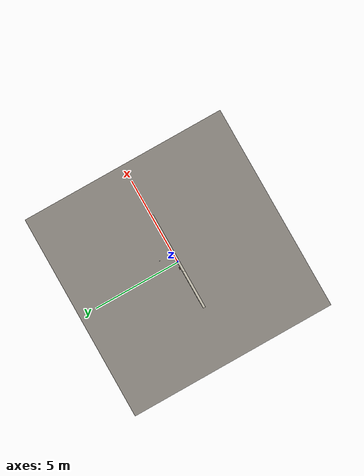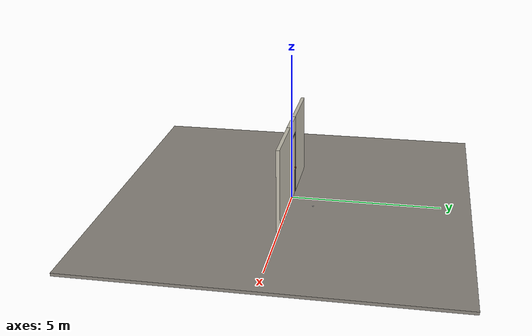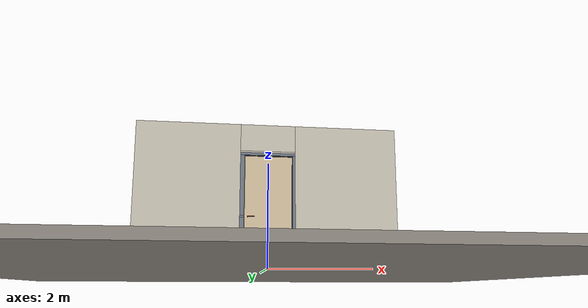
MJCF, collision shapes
<?xml version="1.0" ?>
<mujoco model="db0999_swing_single_full">
  <compiler angle="radian" meshdir="../../hardware" texturedir="../../textures" autolimits="true" inertiafromgeom="false"/>
  <option timestep="0.002" integrator="implicitfast" cone="elliptic" impratio="10" noslip_iterations="3">
    <flag multiccd="enable"/>
  </option>
  <size memory="16M"/>
  <default>
    <geom condim="4" solref="0.005 1" solimp="0.95 0.99 0.001"/>
    <joint solreflimit="0.005 1" solimplimit="0.95 0.99 0.001"/>
    <tendon solreflimit="0.005 1"/>
    <equality solref="0.002 1"/>
  </default>
  <visual>
    <headlight ambient="0.4 0.4 0.4" diffuse="0.7 0.7 0.7" specular="0.2 0.2 0.2"/>
    <quality shadowsize="4096"/>
    <map znear="0.01" zfar="60"/>
  </visual>
  <asset>
    <mesh name="hinge_dcb8da44bf" file="hinge_dcb8da44bf.obj"/>
    <mesh name="hinge_jamb_8e208d7310" file="hinge_jamb_8e208d7310.obj"/>
    <mesh name="lever_9f02b544cf" file="lever_9f02b544cf.obj"/>
    <material name="mat_floor" rgba="0.55 0.53 0.5 1" specular="0.2" shininess="0.15" reflectance="0"/>
    <material name="mat_wall" rgba="0.78 0.76 0.7 1" specular="0.2" shininess="0.1" reflectance="0"/>
    <material name="mat_leaf" rgba="0.82 0.75 0.62 1" specular="0.2" shininess="0.52" reflectance="0"/>
    <material name="mat_hinge" rgba="0.65 0.66 0.68 1" specular="0.74" shininess="0.5" reflectance="0.36"/>
    <material name="mat_op_nickel_satin" rgba="0.72 0.7 0.66 1" specular="0.8" shininess="0.65" reflectance="0.4"/>
    <material name="mat_trim" rgba="0.85 0.66 0.3 1" specular="0.8" shininess="0.75" reflectance="0.4"/>
    <material name="mat_bolt" rgba="0.85 0.66 0.3 1" specular="0.8" shininess="0.75" reflectance="0.4"/>
    <material name="mat_frame" rgba="0.45 0.48 0.52 1" specular="0.32" shininess="0.6" reflectance="0.08"/>
    <material name="mat_kick" rgba="0.75 0.76 0.77 1" specular="0.8" shininess="0.65" reflectance="0.4"/>
    <material name="mat_stop" rgba="0.9 0.9 0.92 1" specular="0.8" shininess="0.9" reflectance="0.4"/>
    <texture name="skybox" type="skybox" builtin="gradient" rgb1="0.6 0.7 0.85" rgb2="0.9 0.92 0.95" width="256" height="256"/>
  </asset>
  <worldbody>
    <light name="sun" pos="1.5 -2.5 4" dir="-0.3 0.5 -0.8" directional="true" diffuse="0.8 0.8 0.8" specular="0.3 0.3 0.3" castshadow="true"/>
    <light name="fill" pos="-1.5 2.5 3" dir="0.3 -0.5 -0.7" directional="true" diffuse="0.35 0.35 0.4" castshadow="false"/>
    <camera name="robot_view" pos="0 -2.659812 1.812087" xyaxes="1 0 0 0 0.26963 0.962964" fovy="52"/>
    <camera name="far_view" pos="0 2.615813 1.812087" xyaxes="-1 0 0 0 -0.26963 0.962964" fovy="52"/>
    <camera name="iso" pos="-2.004737 -2.237762 2.234138" xyaxes="0.741536 -0.670913 0 0.242917 0.268487 0.932151" fovy="46"/>
    <camera name="detail_handle" pos="-0.106 -0.8835 1.245" xyaxes="0.97561 0.219512 0 -0.070934 0.315262 0.94635" fovy="38"/>
    <geom name="floor" type="box" size="6 6 0.05" pos="0 0 -0.05" material="mat_floor" group="0" contype="1" conaffinity="1" friction="0.8 0.005 0.0001" density="2400"/>
    <geom name="wall_left" type="box" size="0.9795 0.0575 1.3735" pos="-1.5205 -0.022 1.3735" material="mat_wall" group="0" contype="1" conaffinity="1" friction="0.6 0.005 0.0001" density="800"/>
    <geom name="wall_right" type="box" size="0.9945 0.0575 1.3735" pos="1.5055 -0.022 1.3735" material="mat_wall" group="0" contype="1" conaffinity="1" friction="0.6 0.005 0.0001" density="800"/>
    <geom name="wall_header" type="box" size="0.526 0.0575 0.26" pos="-0.015 -0.022 2.487" material="mat_wall" group="0" contype="1" conaffinity="1" friction="0.6 0.005 0.0001" density="800"/>
    <geom name="hinge_0_jamb" type="mesh" mesh="hinge_jamb_8e208d7310" pos="0.458 0.0355 0.259" quat="0 0 0 1" material="mat_hinge" group="1" contype="0" conaffinity="0" density="7850"/>
    <geom name="hinge_1_jamb" type="mesh" mesh="hinge_jamb_8e208d7310" pos="0.458 0.0355 1.076" quat="0 0 0 1" material="mat_hinge" group="1" contype="0" conaffinity="0" density="7850"/>
    <geom name="hinge_2_jamb" type="mesh" mesh="hinge_jamb_8e208d7310" pos="0.458 0.0355 1.963" quat="0 0 0 1" material="mat_hinge" group="1" contype="0" conaffinity="0" density="7850"/>
    <geom name="jamb_hinge" type="box" size="0.025 0.0575 1.0735" pos="0.486 -0.022 1.0735" material="mat_frame" group="0" contype="1" conaffinity="1" friction="0.6 0.005 0.0001" density="300"/>
    <geom name="strike_965_wall_n" type="box" size="0.04 0.035 0.0183" pos="-0.501 -0.0445 0.965" material="mat_frame" group="0" contype="1" conaffinity="1" friction="0.6 0.005 0.0001" density="300"/>
    <geom name="strike_965_wall_p" type="box" size="0.04 0.008 0.0183" pos="-0.501 0.0175 0.965" material="mat_frame" group="0" contype="1" conaffinity="1" friction="0.6 0.005 0.0001" density="300"/>
    <geom name="strike_965_ramp" type="box" size="0.04 0.018028 0.0183" pos="-0.504282 0.018312 0.965" quat="0.957092 0 0 0.289784" material="mat_frame" group="0" contype="1" conaffinity="1" friction="0.12 0.005 0.0001" density="300"/>
    <geom name="strike_965_back" type="box" size="0.0285 0.0095 0.0183" pos="-0.5125 0 0.965" material="mat_frame" group="0" contype="1" conaffinity="1" friction="0.6 0.005 0.0001" density="300"/>
    <geom name="jamb_strike_0" type="box" size="0.04 0.0575 0.47335" pos="-0.501 -0.022 0.47335" material="mat_frame" group="0" contype="1" conaffinity="1" friction="0.6 0.005 0.0001" density="300"/>
    <geom name="jamb_strike_1" type="box" size="0.04 0.0575 0.58185" pos="-0.501 -0.022 1.56515" material="mat_frame" group="0" contype="1" conaffinity="1" friction="0.6 0.005 0.0001" density="300"/>
    <geom name="jamb_head" type="box" size="0.526 0.0575 0.025" pos="-0.015 -0.022 2.172" material="mat_frame" group="0" contype="1" conaffinity="1" friction="0.6 0.005 0.0001" density="300"/>
    <geom name="head_stud" type="box" size="0.526 0.0575 0.015" pos="-0.015 -0.022 2.212" material="mat_wall" group="0" contype="1" conaffinity="1" friction="0.6 0.005 0.0001" density="500"/>
    <geom name="stop_hinge" type="box" size="0.0055 0.016 1.0735" pos="0.4555 -0.045 1.0735" material="mat_frame" group="0" contype="1" conaffinity="1" friction="0.6 0.005 0.0001" density="300"/>
    <geom name="stop_strike" type="box" size="0.0055 0.016 1.0735" pos="-0.4555 -0.045 1.0735" material="mat_frame" group="0" contype="1" conaffinity="1" friction="0.6 0.005 0.0001" density="300"/>
    <geom name="stop_head" type="box" size="0.461 0.016 0.0055" pos="0 -0.045 2.1415" material="mat_frame" group="0" contype="1" conaffinity="1" friction="0.6 0.005 0.0001" density="300"/>
    <geom name="floor_stop_dome" type="sphere" size="0.025" pos="0.545635 0.807701 0" material="mat_stop" group="0" contype="1" conaffinity="1" friction="0.6 0.005 0.0001" density="7000"/>
    <site name="approach_point" pos="0 -1.5 0" quat="1 0 0 0" size="0.05" rgba="0.2 0.9 0.2 0.5" group="4"/>
    <site name="goal_point" pos="0 1.5 0" quat="1 0 0 0" size="0.05" rgba="0.2 0.9 0.2 0.5" group="4"/>
    <site name="door_plane_center" pos="0 0 1.0735" quat="1 0 0 0" size="0.02" rgba="0.2 0.9 0.2 0.5" group="4"/>
    <body name="leaf" pos="0.461 0 0">
      <inertial pos="-0.456119 -0.000675 1.049192" mass="92.129026" quat="0.500624 0.499057 0.499956 -0.500361" diaginertia="6.529148075 36.321052156 42.796753581"/>
      <joint name="leaf_hinge" type="hinge" axis="0 0 -1" pos="-0.003 0.0355 0" limited="true" range="0 1.658063" damping="0.318966" frictionloss="2.466476" armature="0.02"/>
      <geom name="leaf_slab" type="box" size="0.457 0.0285 1.067" pos="-0.46 0 1.076" material="mat_leaf" group="0" contype="1" conaffinity="1" friction="0.4 0.005 0.0001" density="1"/>
      <geom name="hinge_0" type="mesh" mesh="hinge_dcb8da44bf" pos="-0.003 0.0355 0.259" quat="0 0 0 1" material="mat_hinge" group="1" contype="0" conaffinity="0" density="7850"/>
      <geom name="hinge_1" type="mesh" mesh="hinge_dcb8da44bf" pos="-0.003 0.0355 1.076" quat="0 0 0 1" material="mat_hinge" group="1" contype="0" conaffinity="0" density="7850"/>
      <geom name="hinge_2" type="mesh" mesh="hinge_dcb8da44bf" pos="-0.003 0.0355 1.963" quat="0 0 0 1" material="mat_hinge" group="1" contype="0" conaffinity="0" density="7850"/>
      <geom name="leaf_latch_bolt_faceplate" type="box" size="0.0006 0.014 0.0283" pos="-0.9164 0 0.965" material="mat_bolt" group="1" contype="0" conaffinity="0" density="8500"/>
      <geom name="kick_plate_n" type="box" size="0.427 0.0008 0.125" pos="-0.46 -0.0293 0.144" material="mat_kick" group="2" contype="0" conaffinity="0" density="7900"/>
      <site name="leaf_edge_mid" pos="-0.917 0 1.067" quat="1 0 0 0" size="0.02" rgba="0.2 0.9 0.2 0.5" group="4"/>
      <body name="leaf_handle" pos="-0.847 0 0.965">
        <inertial pos="0.028211 0 0" mass="0.989728" quat="0 0.707107 0.707107 0" diaginertia="0.001781549 0.004346844 0.005949982"/>
        <joint name="leaf_handle_hinge" type="hinge" axis="0 1 0" limited="true" range="0 0.96" damping="0.245626" frictionloss="0.048" stiffness="1.2" springref="-0.458333" armature="0.01"/>
        <geom name="leaf_handle_spindle" type="cylinder" size="0.006 0.0365" pos="0 0 0" quat="0.707107 -0.707107 0 0" material="mat_op_nickel_satin" group="1" contype="0" conaffinity="0" density="7850"/>
        <geom name="leaf_handle_lever_n" type="mesh" mesh="lever_9f02b544cf" pos="0 -0.0285 0" quat="0 0 -0.707107 0.707107" material="mat_op_nickel_satin" group="1" contype="0" conaffinity="0" density="3000"/>
        <geom name="leaf_handle_lever_col_n" type="capsule" size="0.0095 0.053" pos="0.0625 -0.0835 0" quat="0.707107 0 0.707107 0" material="mat_op_nickel_satin" group="3" contype="1" conaffinity="1" rgba="0.8 0.3 0.3 0.25" friction="0.7 0.01 0.0001" density="3000"/>
        <geom name="leaf_handle_hub_col_n" type="cylinder" size="0.012 0.022" pos="0 -0.0585 0" quat="0.707107 -0.707107 0 0" material="mat_op_nickel_satin" group="3" contype="1" conaffinity="1" rgba="0.8 0.3 0.3 0.25" friction="0.6 0.005 0.0001" density="3000"/>
        <geom name="leaf_handle_lever_p" type="mesh" mesh="lever_9f02b544cf" pos="0 0.0285 0" quat="0 0 0.707107 0.707107" material="mat_op_nickel_satin" group="1" contype="0" conaffinity="0" density="3000"/>
        <geom name="leaf_handle_lever_col_p" type="capsule" size="0.0095 0.053" pos="0.0625 0.0835 0" quat="0.707107 0 0.707107 0" material="mat_op_nickel_satin" group="3" contype="1" conaffinity="1" rgba="0.8 0.3 0.3 0.25" friction="0.7 0.01 0.0001" density="3000"/>
        <geom name="leaf_handle_hub_col_p" type="cylinder" size="0.012 0.022" pos="0 0.0585 0" quat="0.707107 -0.707107 0 0" material="mat_op_nickel_satin" group="3" contype="1" conaffinity="1" rgba="0.8 0.3 0.3 0.25" friction="0.6 0.005 0.0001" density="3000"/>
        <site name="leaf_handle_grip_n" pos="0.1 -0.0835 0" quat="1 0 0 0" size="0.012" rgba="0.2 0.9 0.2 0.5" group="4"/>
        <site name="leaf_handle_grip_p" pos="0.1 0.0835 0" quat="1 0 0 0" size="0.012" rgba="0.2 0.9 0.2 0.5" group="4"/>
      </body>
      <body name="leaf_latch_bolt" pos="-0.917 0 0.965">
        <inertial pos="0.0055 0 0" mass="0.074627" quat="0.92388 0.382683 0 0" diaginertia="0.000002271 0.000013255 0.000013255"/>
        <joint name="leaf_latch_bolt_slide" type="slide" axis="1 0 0" limited="true" range="0 0.019" damping="2" frictionloss="0.3" stiffness="600" springref="-0.01" armature="0.1"/>
        <geom name="leaf_latch_bolt_capsule" type="capsule" size="0.008 0.0165" pos="0.0055 0 0" quat="0.707107 0 -0.707107 0" material="mat_bolt" group="0" contype="1" conaffinity="1" friction="0.2 0.005 0.0001" density="8500"/>
      </body>
    </body>
  </worldbody>
  <tendon>
    <fixed name="leaf_latch_bolt_coupling" limited="true" range="0 10">
      <joint joint="leaf_latch_bolt_slide" coef="1"/>
      <joint joint="leaf_handle_hinge" coef="-0.020879"/>
    </fixed>
  </tendon>
  <sensor>
    <jointpos name="leaf_hinge_pos" joint="leaf_hinge"/>
    <jointvel name="leaf_hinge_vel" joint="leaf_hinge"/>
    <jointpos name="leaf_handle_hinge_pos" joint="leaf_handle_hinge"/>
    <jointvel name="leaf_handle_hinge_vel" joint="leaf_handle_hinge"/>
    <jointpos name="leaf_latch_bolt_slide_pos" joint="leaf_latch_bolt_slide"/>
    <jointvel name="leaf_latch_bolt_slide_vel" joint="leaf_latch_bolt_slide"/>
  </sensor>
</mujoco>
